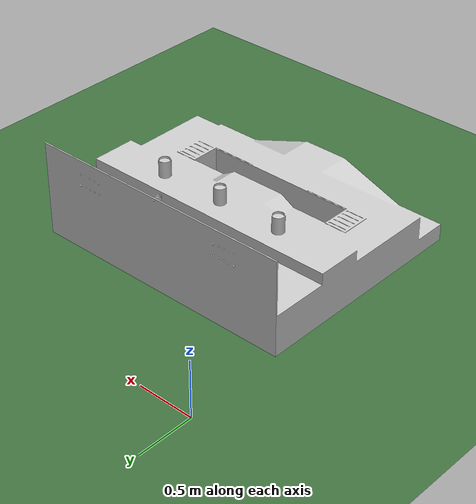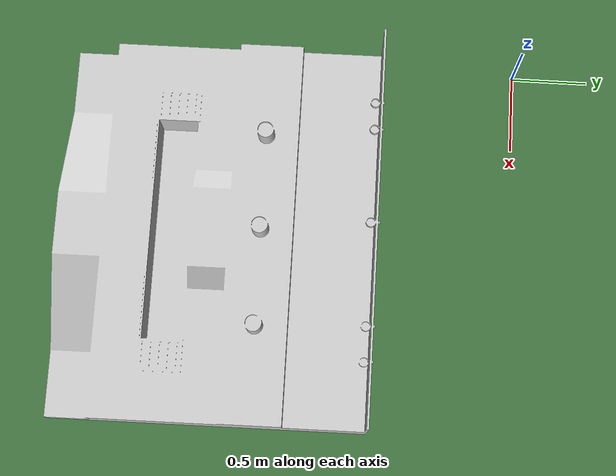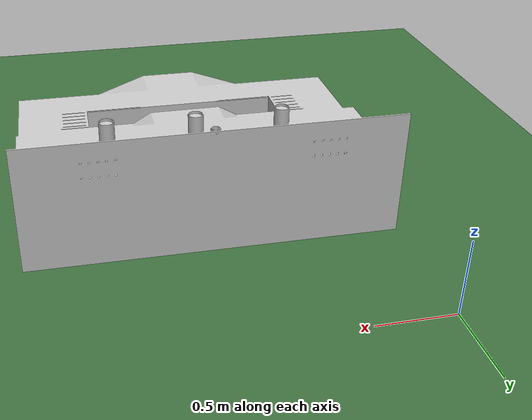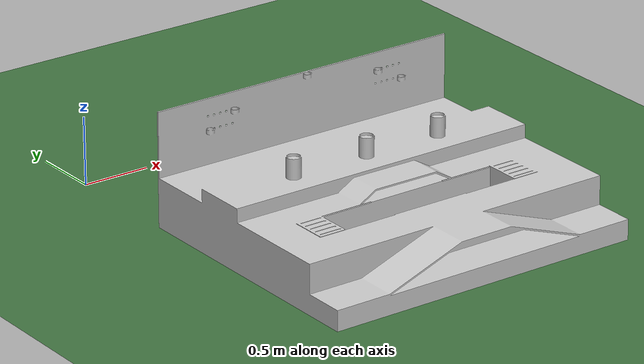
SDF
<?xml version="1.0" ?>
<sdf version="1.9">
  <world name="default">

    <!-- Bright scene -->
    <scene>
      <ambient>0.6 0.6 0.6 1</ambient>
      <background>0.75 0.8 0.9 1</background>
    </scene>

    <!-- Directional light (unique name) -->
    <light type="directional" name="custom_sun">
      <pose>0 0 10 0.6 0 0</pose>
      <diffuse>1 1 1 1</diffuse>
      <specular>0.1 0.1 0.1 1</specular>
      <attenuation>
        <range>100</range>
        <constant>0.5</constant>
        <linear>0.01</linear>
        <quadratic>0.001</quadratic>
      </attenuation>
      <direction>-0.5 -0.5 -1</direction>
      <cast_shadows>true</cast_shadows>
    </light>

    <!-- Procedural ground -->
    <model name="procedural_ground">
      <static>true</static>
      <pose>0 0 0 0 0 0</pose>
      <link name="ground_link">
        <collision name="ground_collision">
          <geometry>
            <plane>
              <normal>0 0 1</normal>
              <size>200 200</size>
            </plane>
          </geometry>
        </collision>
        <visual name="ground_visual">
          <geometry>
            <plane>
              <normal>0 0 1</normal>
              <size>200 200</size>
            </plane>
          </geometry>
          <material>
            <ambient>0.25 0.35 0.25 1</ambient>
            <diffuse>0.25 0.45 0.25 1</diffuse>
            <specular>0.05 0.05 0.05 1</specular>
          </material>
        </visual>
      </link>
    </model>

    <!-- Your CAD environment -->
    <model name="my_environment">
      <static>true</static>
      <!-- Adjust pose to place correctly -->
      <pose>0 0 -1 1.5708 0 0</pose>
      <link name="env_link">
        <visual name="env_visual">
          <geometry>
            <mesh>
              <uri>file:///home/mj/Desktop/IDC-ROBOCON/IDC-Robocon/gazebo/meshes/environment.dae</uri>
              <scale>0.001 0.001 0.001</scale>
            </mesh>
          </geometry>
          <material>
            <ambient>0.8 0.8 0.8 1</ambient>
            <diffuse>0.8 0.8 0.8 1</diffuse>
            <specular>0.2 0.2 0.2 1</specular>
          </material>
        </visual>
        <collision name="env_collision">
          <geometry>
            <mesh>
              <uri>file:///home/mj/Desktop/IDC-ROBOCON/IDC-Robocon/gazebo/meshes/environment.dae</uri>
              <scale>0.001 0.001 0.001</scale>
            </mesh>
          </geometry>
        </collision>
      </link>
    </model>

  </world>
</sdf>
